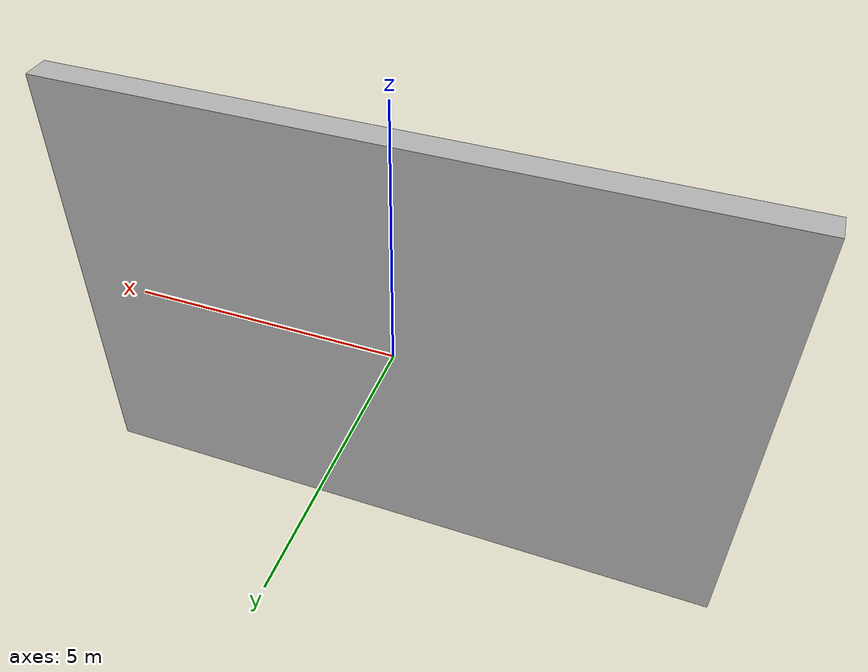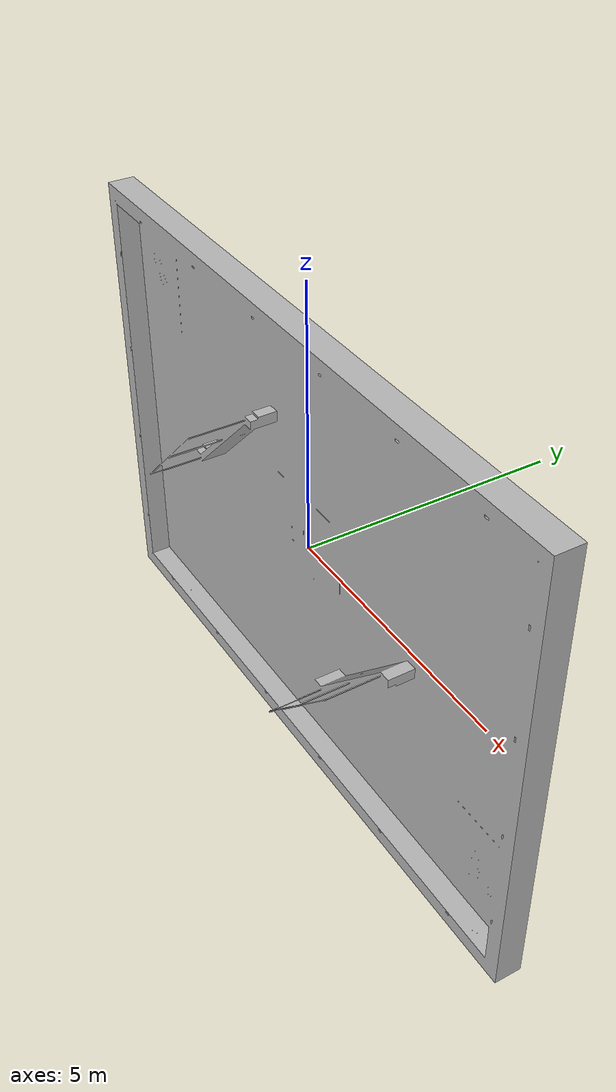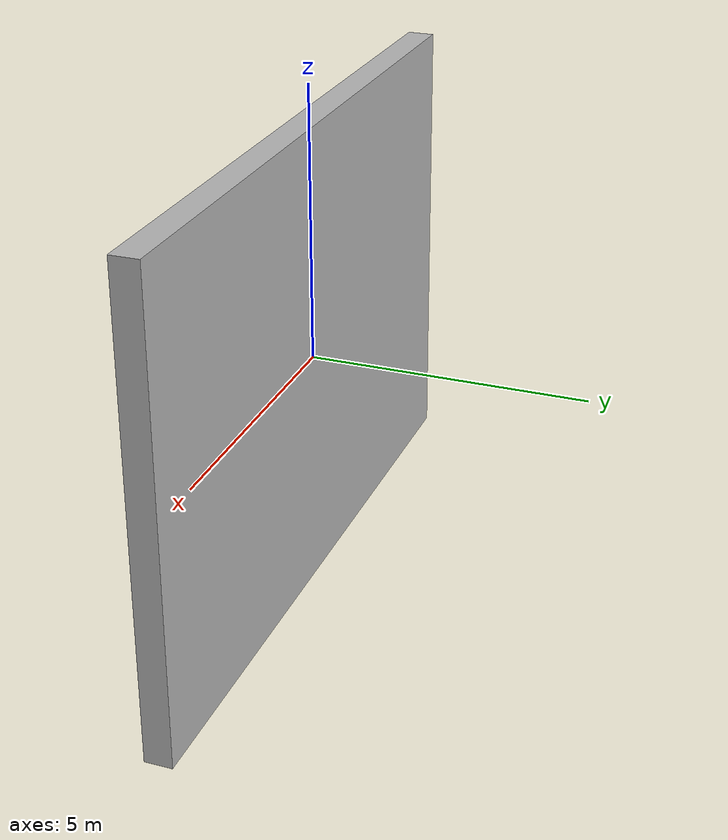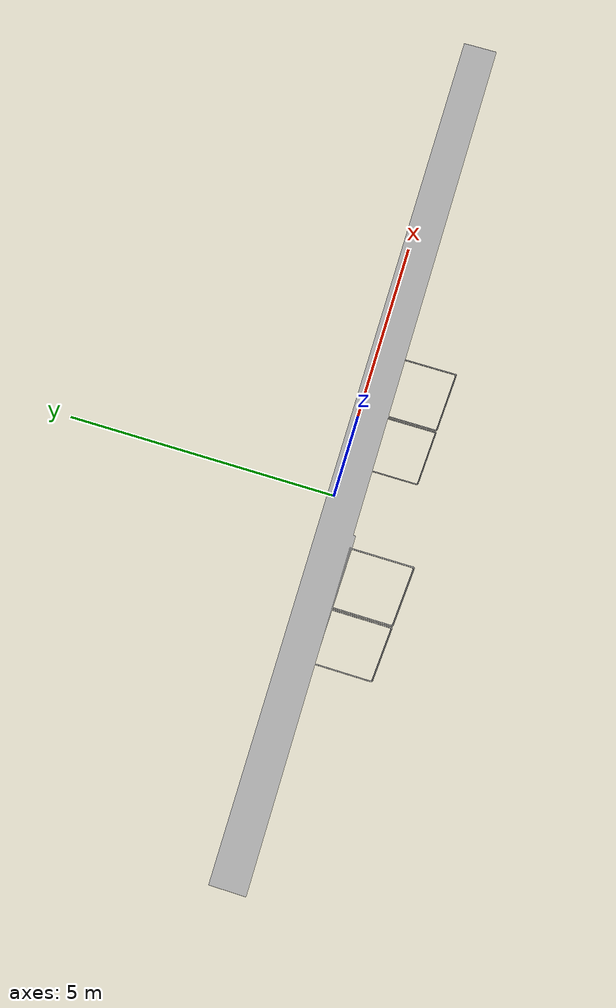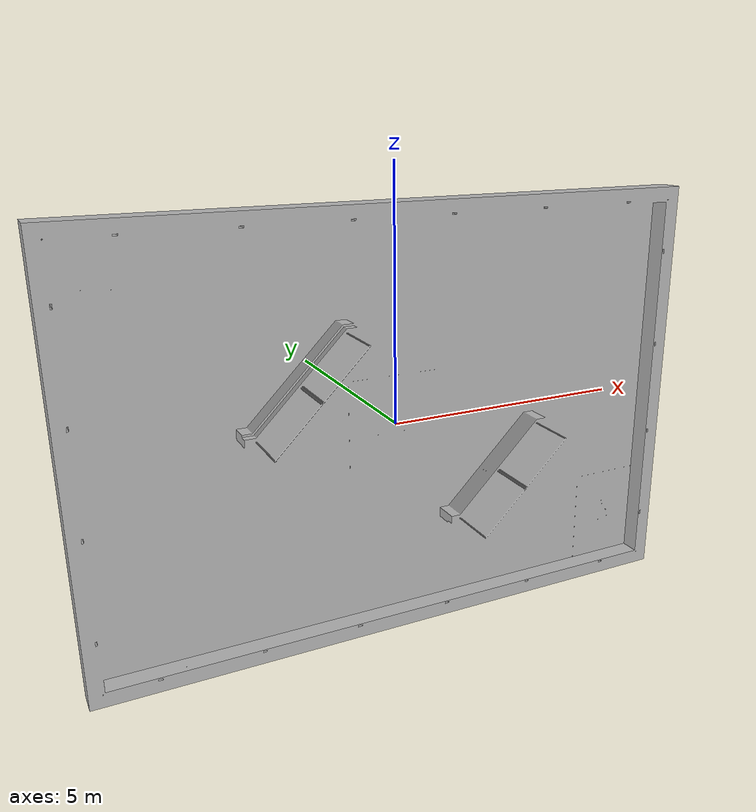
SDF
<sdf version="1.7">
 <world name="default">
  <light name="sun" type="directional">
   <pose>0 0 300 0 -0 0</pose>
   <diffuse>0.8 0.8 0.8 1</diffuse>
   <specular>0.2 0.2 0.2 1</specular>
   <attenuation><range>1000</range><constant>1</constant><linear>0</linear><quadratic>0</quadratic></attenuation>
   <direction>0 1 0</direction>
   <spot><inner_angle>0</inner_angle><outer_angle>0</outer_angle><falloff>0</falloff></spot>
  </light>
  <physics name="default_physics" default="0" type="ode">
   <max_step_size>0.001</max_step_size>
   <real_time_factor>1</real_time_factor>
   <real_time_update_rate>1000</real_time_update_rate>
  </physics>
  <scene><ambient>0.4 0.4 0.4 1</ambient><background>0.7 0.7 0.7 1</background><shadows>1</shadows></scene>
  <spherical_coordinates>
   <surface_model>EARTH_WGS84</surface_model>
   <latitude_deg>0</latitude_deg>
   <longitude_deg>0</longitude_deg>
   <elevation>0</elevation>
   <heading_deg>0</heading_deg>
  </spherical_coordinates>
  <gravity>0 0 -9.81</gravity>
  <magnetic_field>0 0 0</magnetic_field>
  <atmosphere type="adiabatic"/>
  <model name="map">
   <static>1</static>
   <link name="link">
    <collision name="collision">
     <geometry>
      <mesh><uri>model://RMUL2025_world/meshes/RMUL_2025.stl</uri><scale>0.001 0.001 0.001</scale></mesh>
     </geometry>
     <surface><friction><ode><mu>100</mu><mu2>50</mu2></ode></friction></surface>
    </collision>
    <visual name="visual">
     <geometry>
      <mesh><uri>model://RMUL2025_world/meshes/RMUL_2025.stl</uri><scale>0.001 0.001 0.001</scale></mesh>
     </geometry>
    </visual>
   </link>
  </model>
  <light name="user_directional_light_0" type="directional">
   <pose>11.043 -0.000552 1 0 -0 0</pose>
   <diffuse>0.5 0.5 0.5 1</diffuse>
   <specular>0.1 0.1 0.1 1</specular>
   <direction>0.1 0.1 -0.9</direction>
   <attenuation>
    <range>20</range>
    <constant>0.5</constant>
    <linear>0.01</linear>
    <quadratic>0.001</quadratic>
   </attenuation>
  </light>
 </world>
</sdf>
